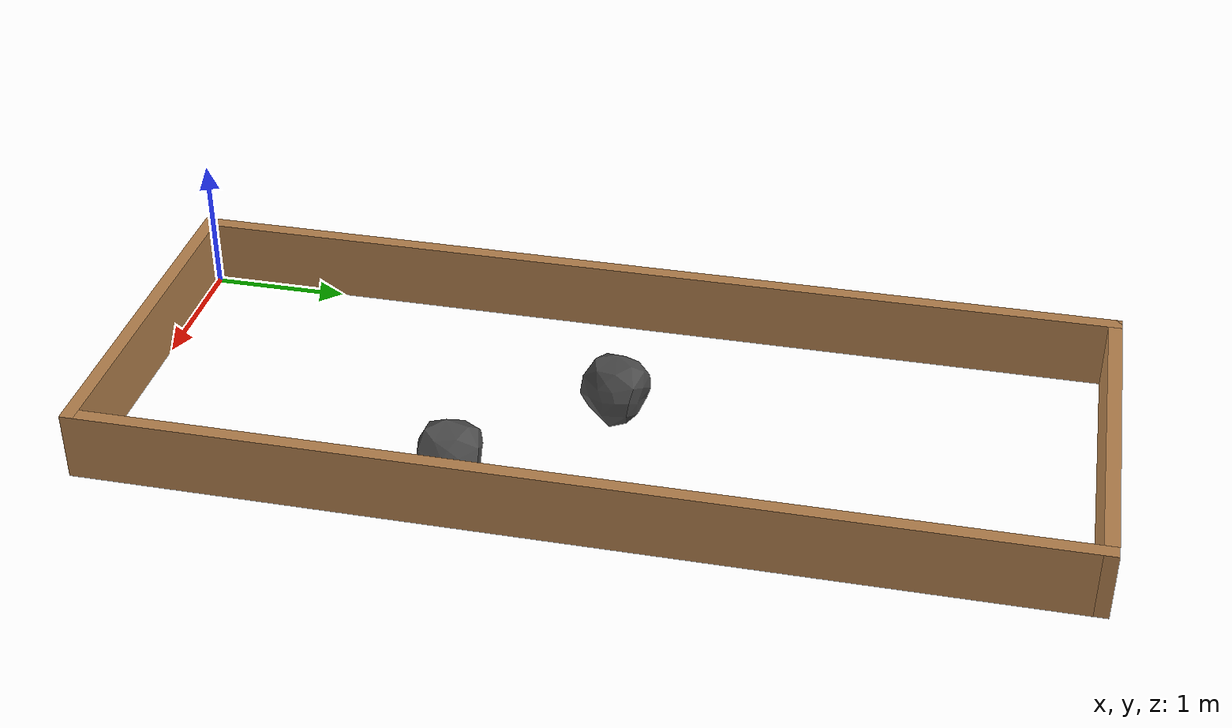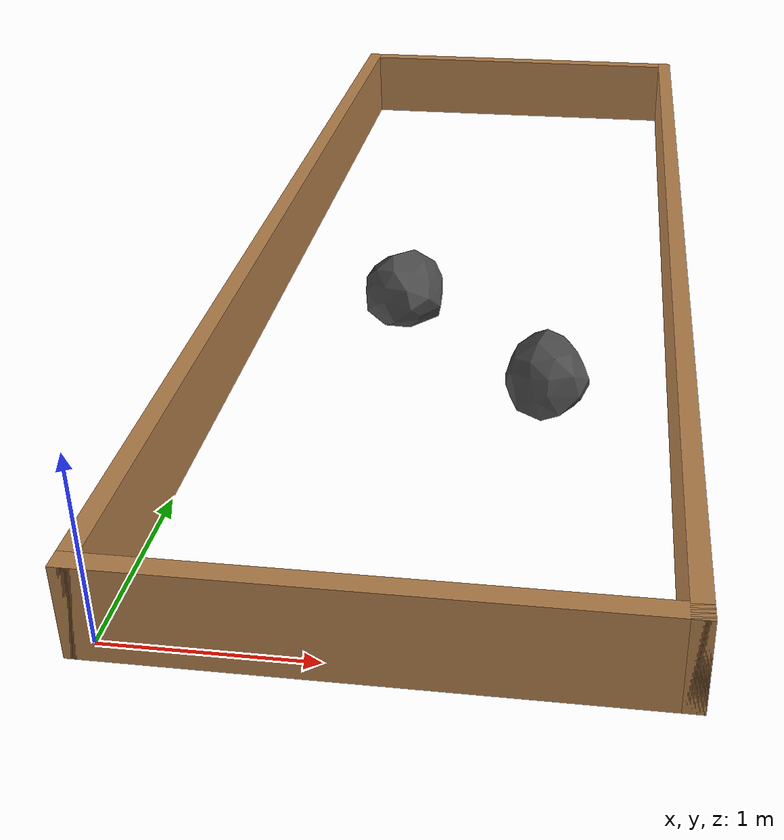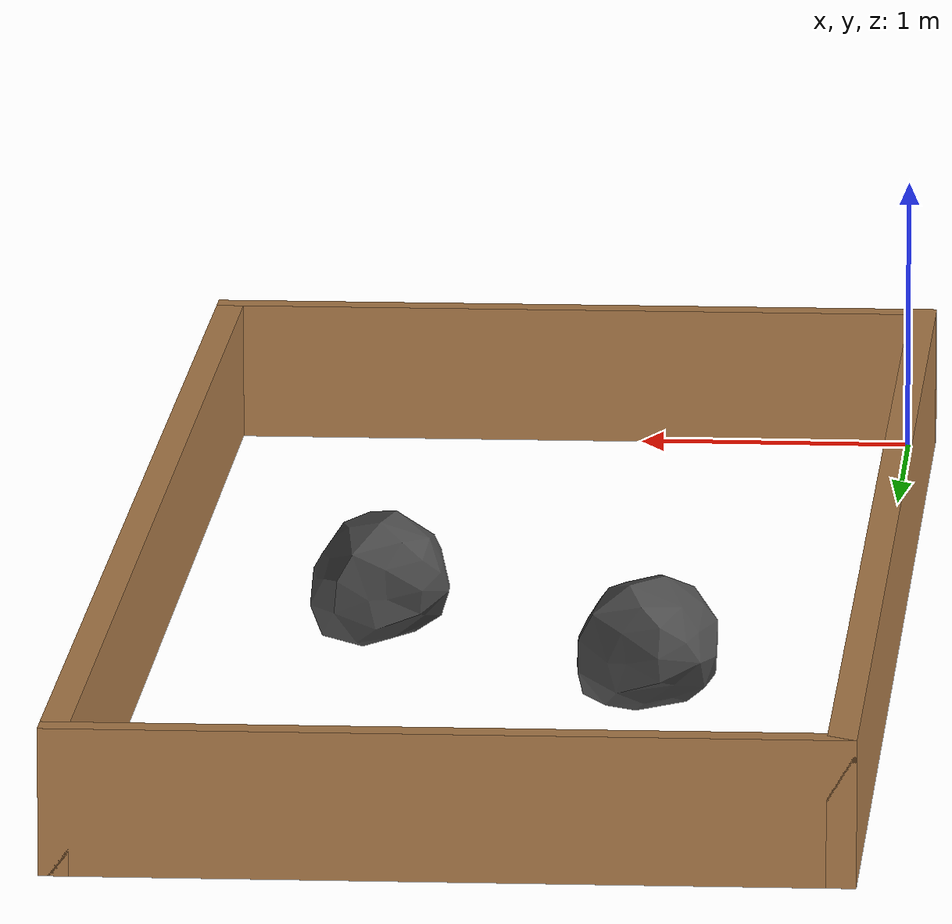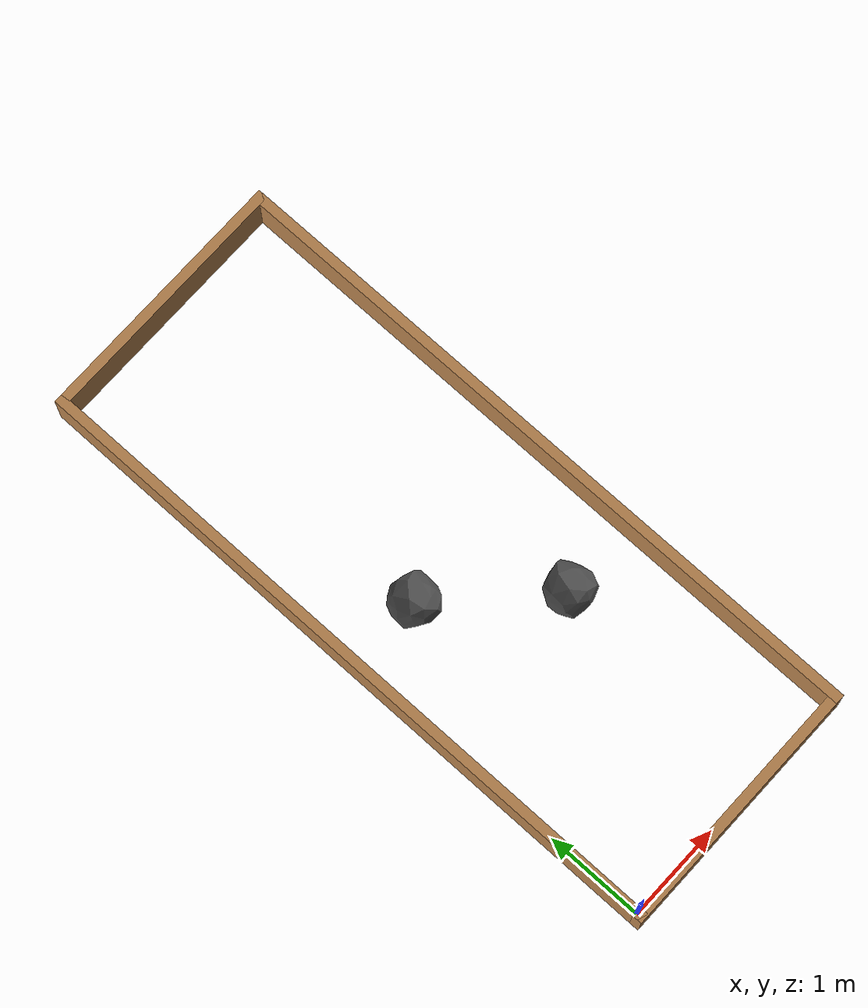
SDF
<sdf version="1.6">
 <world name="empty_rocks">
  <include><uri>model://sun</uri></include>
  <physics name="default_physics" default="0" type="ode">
   <max_step_size>0.01</max_step_size>
   <real_time_factor>1</real_time_factor>
   <real_time_update_rate>100</real_time_update_rate>
  </physics>
  <scene><ambient>0.4 0.4 0.4 1</ambient><background>0.7 0.7 0.7 1</background><shadows>0</shadows></scene>
  <model name="moon_arena"><include><uri>model://arena</uri></include></model>
  <model name="rock_1"><pose>0.79 3.37 0 0 0 0</pose><include><uri>model://rock</uri></include></model>
  <model name="rock_2"><pose>1.8 2.4 0 0 0 0.5</pose><include><uri>model://rock</uri></include></model>
 </world>
</sdf>

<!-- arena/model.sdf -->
<sdf version='1.6'>
  <model name='moon_arena'>
    <pose frame=''>0 0 0 0 -0 0</pose>
    <link name='short_wall_1'>
      <collision name='short_wall_1_Collision'>
        <geometry>
          <box>
            <size>2.7 0.1 0.5</size>
          </box>
        </geometry>
        <pose frame=''>0 0 0.25 0 -0 0</pose>
        <max_contacts>10</max_contacts>
      </collision>
      <visual name='short_wall_1_Visual'>
        <pose frame=''>0 0 0.25 0 -0 0</pose>
        <geometry>
          <box>
            <size>2.7 0.1 0.5</size>
          </box>
        </geometry>
        <material>
          <script>
            <uri>file://media/materials/scripts/gazebo.material</uri>
            <name>Gazebo/Wood</name>
          </script>
          <ambient>1 1 1 1</ambient>
        </material>
        <meta>
          <layer>0</layer>
        </meta>
      </visual>
      <pose frame=''>1.25 -0.05 0 0 -0 0</pose>
      <self_collide>0</self_collide>
      <enable_wind>0</enable_wind>
      <kinematic>0</kinematic>
    </link>
    <link name='long_wall_1'>
      <collision name='long_wall_1_Collision'>
        <geometry>
          <box>
            <size>7.0 0.1 0.5</size>
          </box>
        </geometry>
        <pose frame=''>0 0 0.25 0 -0 0</pose>
        <max_contacts>10</max_contacts>
      </collision>
      <visual name='long_wall_1_Visual'>
        <pose frame=''>0 0 0.25 0 -0 0</pose>
        <geometry>
          <box>
            <size>7.0 0.1 0.5</size>
          </box>
        </geometry>
        <material>
          <script>
            <uri>file://media/materials/scripts/gazebo.material</uri>
            <name>Gazebo/Wood</name>
          </script>
          <ambient>1 1 1 1</ambient>
        </material>
        <meta>
          <layer>0</layer>
        </meta>
      </visual>
      <pose frame=''>-0.05 3.4 0 0 -0 1.5708</pose>
      <self_collide>0</self_collide>
      <enable_wind>0</enable_wind>
      <kinematic>0</kinematic>
    </link>
    <link name='long_wall_2'>
      <collision name='long_wall_2_Collision'>
        <geometry>
          <box>
            <size>7.0 0.1 0.5</size>
          </box>
        </geometry>
        <pose frame=''>0 0 0.25 0 -0 0</pose>
        <max_contacts>10</max_contacts>
      </collision>
      <visual name='long_wall_2_Visual'>
        <pose frame=''>0 0 0.25 0 -0 0</pose>
        <geometry>
          <box>
            <size>7.0 0.1 0.5</size>
          </box>
        </geometry>
        <material>
          <script>
            <uri>file://media/materials/scripts/gazebo.material</uri>
            <name>Gazebo/Wood</name>
          </script>
          <ambient>1 1 1 1</ambient>
        </material>
        <meta>
          <layer>0</layer>
        </meta>
      </visual>
      <pose frame=''>2.55 3.4 0 0 -0 1.5708</pose>
      <self_collide>0</self_collide>
      <enable_wind>0</enable_wind>
      <kinematic>0</kinematic>
    </link>
    <link name='short_wall_2'>
      <collision name='short_wall_2_Collision'>
        <geometry>
          <box>
            <size>2.7 0.1 0.5</size>
          </box>
        </geometry>
        <pose frame=''>0 0 0.25 0 -0 0</pose>
        <max_contacts>10</max_contacts>
      </collision>
      <visual name='short_wall_2_Visual'>
        <pose frame=''>0 0 0.25 0 -0 0</pose>
        <geometry>
          <box>
            <size>2.7 0.1 0.5</size>
          </box>
        </geometry>
        <material>
          <script>
            <uri>file://media/materials/scripts/gazebo.material</uri>
            <name>Gazebo/Wood</name>
          </script>
          <ambient>1 1 1 1</ambient>
        </material>
        <meta>
          <layer>0</layer>
        </meta>
      </visual>
      <pose frame=''>1.25 6.85 0 0 -0 0</pose>
      <self_collide>0</self_collide>
      <enable_wind>0</enable_wind>
      <kinematic>0</kinematic>
    </link>
    <static>1</static>
  </model>
</sdf>

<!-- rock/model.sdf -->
<sdf version='1.6'>
  <model name='rock'>
    <link name='link_0'>
      <pose frame=''>-0 0 0 0 -0 0</pose>
      <gravity>0</gravity>
      <self_collide>0</self_collide>
      <kinematic>0</kinematic>
      <enable_wind>0</enable_wind>
      <visual name='visual'>
        <pose frame=''>0 0 0 0 -0 0</pose>
        <geometry>
          <mesh>
            <uri>model://rock/meshes/rock.dae</uri>
            <scale>1 1 1</scale>
          </mesh>
        </geometry>
       <material>
          <ambient>0.3 0.3 0.3 1</ambient>
          <emissive>0.3 0.3 0.3 1</emissive>
          <script>
            <uri>model://rock/materials/scripts</uri>
	          <name>rock</name>
          </script>
        </material>
        <transparency>0</transparency>
        <cast_shadows>1</cast_shadows>
      </visual>
      <collision name='collision'>
        <laser_retro>0</laser_retro>
        <max_contacts>10</max_contacts>
        <pose frame=''>0 0 0 0 -0 0</pose>
        <geometry>
          <mesh>
            <uri>model://rock/meshes/rock.dae</uri>
            <scale>1 1 1</scale>
          </mesh>
        </geometry>
      </collision>
    </link>
    <static>1</static>
    <allow_auto_disable>1</allow_auto_disable>
  </model>
</sdf>
